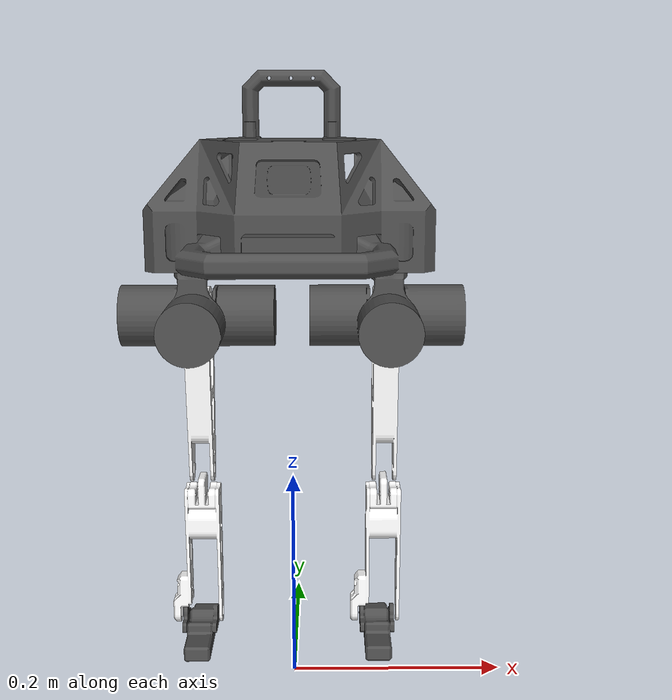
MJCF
<mujoco model="humanoid">
  <compiler angle="radian"/>
  <option timestep="0.0002"/>
  <extension>
    <plugin plugin="mujoco.pid">
      <instance name="4340">
        <config key="kp" value="15.0"/>
        <config key="ki" value="0"/>
        <config key="kd" value="1.5"/>
      </instance>
      <instance name="4310">
        <config key="kp" value="15.0"/>
        <config key="ki" value="0"/>
        <config key="kd" value="1.5"/>
      </instance>
      <instance name="2006">
        <config key="kp" value="5.0"/>
        <config key="ki" value="0.0"/>
        <config key="kd" value="0.0"/>
      </instance>
    </plugin>
  </extension>
  <asset>
    <mesh name="base_link" content_type="model/stl" file="base_link.STL"/>
    <mesh name="left_hip_yaw_link" content_type="model/stl" file="left_hip_yaw_link.STL"/>
    <mesh name="left_hip_roll_link" content_type="model/stl" file="left_hip_roll_link.STL"/>
    <mesh name="left_hip_pitch_link" content_type="model/stl" file="left_hip_pitch_link.STL"/>
    <mesh name="left_knee_link" content_type="model/stl" file="left_knee_link.STL"/>
    <mesh name="left_ankle_link" content_type="model/stl" file="left_ankle_link.STL"/>
    <mesh name="right_hip_yaw_link" content_type="model/stl" file="right_hip_yaw_link.STL"/>
    <mesh name="right_hip_roll_link" content_type="model/stl" file="right_hip_roll_link.STL"/>
    <mesh name="right_hip_pitch_link" content_type="model/stl" file="right_hip_pitch_link.STL"/>
    <mesh name="right_knee_link" content_type="model/stl" file="right_knee_link.STL"/>
    <mesh name="right_ankle_link" content_type="model/stl" file="right_ankle_link.STL"/>
  </asset>
  <actuator>
    <plugin joint="left_hip_yaw_joint" plugin="mujoco.pid" instance="4310"/>
    <plugin joint="left_hip_roll_joint" plugin="mujoco.pid" instance="4310"/>
    <plugin joint="left_hip_pitch_joint" plugin="mujoco.pid" instance="4340"/>
    <plugin joint="left_knee_joint" plugin="mujoco.pid" instance="4340"/>
    <plugin joint="left_ankle_joint" plugin="mujoco.pid" instance="2006"/>
    <plugin joint="right_hip_yaw_joint" plugin="mujoco.pid" instance="4310"/>
    <plugin joint="right_hip_roll_joint" plugin="mujoco.pid" instance="4310"/>
    <plugin joint="right_hip_pitch_joint" plugin="mujoco.pid" instance="4340"/>
    <plugin joint="right_knee_joint" plugin="mujoco.pid" instance="4340"/>
    <plugin joint="right_ankle_joint" plugin="mujoco.pid" instance="2006"/>
  </actuator>
  <worldbody>
  <body name='base_link' pos='0 0 0.4' euler='-0 0 -0'>
    <geom type="mesh" rgba="0.298039 0.298039 0.298039 1" mesh="base_link"/>
    <joint type='free' limited='false'/>
    <body name="left_hip_yaw_link" pos="-0.0875 0 0" quat="0.707105 0 0 0.707108">
      <inertial pos="-0.0379459 -2.06979e-09 -0.0497401" quat="0.997585 0 0.0694572 0" mass="0.324733" diaginertia="0.000141917 0.000129081 0.000116723"/>
      <joint name="left_hip_yaw_joint" pos="0 0 0" axis="0 0 -1" range="-3.14 3.14"/>
      <geom type="mesh" rgba="0.298039 0.298039 0.298039 1" mesh="left_hip_yaw_link"/>
      <body name="left_hip_roll_link" pos="-0.015 0 -0.051862">
        <inertial pos="0.0430697 0 0" quat="0.5 0.5 -0.5 0.5" mass="0.740919" diaginertia="0.000310508 0.000309702 0.000301114"/>
        <joint name="left_hip_roll_joint" pos="0 0 0" axis="1 0 0" range="-0.5 0.5"/>
        <geom type="mesh" rgba="0.298039 0.298039 0.298039 1" mesh="left_hip_roll_link"/>
        <body name="left_hip_pitch_link" pos="0.0445 0.0175 0">
          <inertial pos="0 -0.0162028 -0.0655249" quat="0.707107 1.07685e-05 -1.07685e-05 0.707107" mass="0.112567" diaginertia="0.000231097 0.000210388 2.32687e-05"/>
          <joint name="left_hip_pitch_joint" pos="0 0 0" axis="0 -1 0" range="-1.57 1.57"/>
          <geom type="mesh" rgba="1 1 1 1" mesh="left_hip_pitch_link"/>
          <body name="left_knee_link" pos="0 -0.0215 -0.15">
            <inertial pos="-6.78779e-07 0.0075962 -0.0679927" quat="0.70712 0.00190937 -0.00192493 0.707089" mass="0.0789763" diaginertia="5.55012e-05 5.30824e-05 7.09718e-06"/>
            <joint name="left_knee_joint" pos="0 0 0" axis="0 1 0" range="-1.57 1.57"/>
            <geom type="mesh" rgba="1 1 1 1" mesh="left_knee_link"/>
            <body name="left_ankle_link" pos="0 0.033 -0.15">
              <inertial pos="1.1782e-05 -0.0229687 -0.0191735" quat="0 0.707003 0 0.707211" mass="0.0639911" diaginertia="4.42548e-05 4.3474e-05 4.85594e-06"/>
              <joint name="left_ankle_joint" pos="0 0 0" axis="0 1 0" range="-1.57 1.57"/>
              <geom type="mesh" rgba="0.298039 0.298039 0.298039 1" mesh="left_ankle_link"/>
            </body>
          </body>
        </body>
      </body>
    </body>
    <body name="right_hip_yaw_link" pos="0.0875 0 0" quat="0.707105 0 0 0.707108">
      <inertial pos="-0.0379459 -2.06979e-09 -0.0497401" quat="0.997585 0 0.0694572 0" mass="0.324733" diaginertia="0.000141917 0.000129081 0.000116723"/>
      <joint name="right_hip_yaw_joint" pos="0 0 0" axis="0 0 -1" range="-3.14 3.14"/>
      <geom type="mesh" rgba="0.298039 0.298039 0.298039 1" mesh="right_hip_yaw_link"/>
      <body name="right_hip_roll_link" pos="-0.015 0 -0.051862">
        <inertial pos="0.0430697 0 0" quat="0.5 0.5 -0.5 0.5" mass="0.740919" diaginertia="0.000310508 0.000309702 0.000301114"/>
        <joint name="right_hip_roll_joint" pos="0 0 0" axis="1 0 0" range="-0.5 0.5"/>
        <geom type="mesh" rgba="0.298039 0.298039 0.298039 1" mesh="right_hip_roll_link"/>
        <body name="right_hip_pitch_link" pos="0.0445 0.0175 0">
          <inertial pos="0 -0.0162028 -0.0655249" quat="0.707107 1.07685e-05 -1.07685e-05 0.707107" mass="0.112567" diaginertia="0.000231097 0.000210388 2.32687e-05"/>
          <joint name="right_hip_pitch_joint" pos="0 0 0" axis="0 -1 0" range="-1.57 1.57"/>
          <geom type="mesh" rgba="1 1 1 1" mesh="right_hip_pitch_link"/>
          <body name="right_knee_link" pos="0 -0.0215 -0.15">
            <inertial pos="-6.78779e-07 0.0075962 -0.0679927" quat="0.70712 0.00190937 -0.00192493 0.707089" mass="0.0789763" diaginertia="5.55012e-05 5.30824e-05 7.09718e-06"/>
            <joint name="right_knee_joint" pos="0 0 0" axis="0 1 0" range="-1.57 1.57"/>
            <geom type="mesh" rgba="1 1 1 1" mesh="right_knee_link"/>
            <body name="right_ankle_link" pos="0 0.033 -0.15">
              <inertial pos="1.1782e-05 -0.0229687 -0.0191735" quat="0 0.707003 0 0.707211" mass="0.0639911" diaginertia="4.42548e-05 4.3474e-05 4.85594e-06"/>
              <joint name="right_ankle_joint" pos="0 0 0" axis="0 1 0" range="-1.57 1.57"/>
              <geom type="mesh" rgba="0.298039 0.298039 0.298039 1" mesh="right_ankle_link"/>
            </body>
          </body>
        </body>
      </body>
    </body>
    </body>
  </worldbody>
</mujoco>
